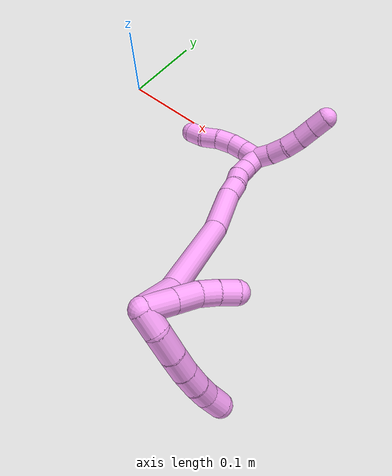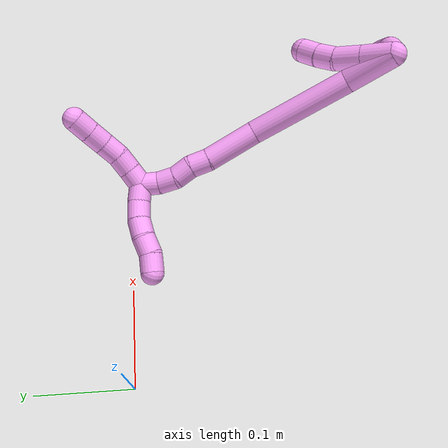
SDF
<sdf version="1.7">
 <world name="default">
  <model name="4">
   <static>0</static>
   <link name="4">
    <collision name="collision-cylinder-e_1_2_8">
     <pose>0.011641 0.000125 0.001546 -0.080484 1.43837 -0.070483</pose>
     <geometry><cylinder><radius>0.0125</radius><length>0.023488</length></cylinder></geometry>
     <surface>
      <friction><ode><mu>1.16</mu><mu2>1.16</mu2><slip1>0</slip1><slip2>0</slip2></ode></friction>
      <contact><ode><kp>1e+06</kp><kd>1</kd><max_vel>0</max_vel><min_depth>0.001</min_depth></ode></contact>
     </surface>
    </collision>
    <visual name="visual-cylinder-e_1_2_8">
     <pose>0.011641 0.000125 0.001546 -0.080484 1.43837 -0.070483</pose>
     <geometry><cylinder><radius>0.0125</radius><length>0.023488</length></cylinder></geometry>
     <material><ambient>1 0.65098 0.996078 1</ambient></material>
    </visual>
    <collision name="collision-cylinder-e_2_8_9">
     <pose>0.038285 -2.7e-05 0.00044 3.03778 1.39495 3.01776</pose>
     <geometry><cylinder><radius>0.0125</radius><length>0.030475</length></cylinder></geometry>
     <surface>
      <friction><ode><mu>1.16</mu><mu2>1.16</mu2><slip1>0</slip1><slip2>0</slip2></ode></friction>
      <contact><ode><kp>1e+06</kp><kd>1</kd><max_vel>0</max_vel><min_depth>0.001</min_depth></ode></contact>
     </surface>
    </collision>
    <visual name="visual-cylinder-e_2_8_9">
     <pose>0.038285 -2.7e-05 0.00044 3.03778 1.39495 3.01776</pose>
     <geometry><cylinder><radius>0.0125</radius><length>0.030475</length></cylinder></geometry>
     <material><ambient>1 0.65098 0.996078 1</ambient></material>
    </visual>
    <collision name="collision-cylinder-e_3_9_10">
     <pose>0.06521 -0.000435 -0.005404 3.1004 1.3089 3.08791</pose>
     <geometry><cylinder><radius>0.0125</radius><length>0.024686</length></cylinder></geometry>
     <surface>
      <friction><ode><mu>1.16</mu><mu2>1.16</mu2><slip1>0</slip1><slip2>0</slip2></ode></friction>
      <contact><ode><kp>1e+06</kp><kd>1</kd><max_vel>0</max_vel><min_depth>0.001</min_depth></ode></contact>
     </surface>
    </collision>
    <visual name="visual-cylinder-e_3_9_10">
     <pose>0.06521 -0.000435 -0.005404 3.1004 1.3089 3.08791</pose>
     <geometry><cylinder><radius>0.0125</radius><length>0.024686</length></cylinder></geometry>
     <material><ambient>1 0.65098 0.996078 1</ambient></material>
    </visual>
    <collision name="collision-cylinder-e_4_10_11">
     <pose>0.088934 7.8e-05 -0.01229 -2.96885 1.26328 -2.90599</pose>
     <geometry><cylinder><radius>0.0125</radius><length>0.024767</length></cylinder></geometry>
     <surface>
      <friction><ode><mu>1.16</mu><mu2>1.16</mu2><slip1>0</slip1><slip2>0</slip2></ode></friction>
      <contact><ode><kp>1e+06</kp><kd>1</kd><max_vel>0</max_vel><min_depth>0.001</min_depth></ode></contact>
     </surface>
    </collision>
    <visual name="visual-cylinder-e_4_10_11">
     <pose>0.088934 7.8e-05 -0.01229 -2.96885 1.26328 -2.90599</pose>
     <geometry><cylinder><radius>0.0125</radius><length>0.024767</length></cylinder></geometry>
     <material><ambient>1 0.65098 0.996078 1</ambient></material>
    </visual>
    <collision name="collision-cylinder-e_5_11_12">
     <pose>0.1104 0.001677 -0.020248 -2.92128 1.14601 -2.80204</pose>
     <geometry><cylinder><radius>0.0125</radius><length>0.021211</length></cylinder></geometry>
     <surface>
      <friction><ode><mu>1.16</mu><mu2>1.16</mu2><slip1>0</slip1><slip2>0</slip2></ode></friction>
      <contact><ode><kp>1e+06</kp><kd>1</kd><max_vel>0</max_vel><min_depth>0.001</min_depth></ode></contact>
     </surface>
    </collision>
    <visual name="visual-cylinder-e_5_11_12">
     <pose>0.1104 0.001677 -0.020248 -2.92128 1.14601 -2.80204</pose>
     <geometry><cylinder><radius>0.0125</radius><length>0.021211</length></cylinder></geometry>
     <material><ambient>1 0.65098 0.996078 1</ambient></material>
    </visual>
    <collision name="collision-cylinder-e_6_12_6">
     <pose>0.131908 0.005219 -0.028249 -2.53606 1.20447 -2.28857</pose>
     <geometry><cylinder><radius>0.0125</radius><length>0.025373</length></cylinder></geometry>
     <surface>
      <friction><ode><mu>1.16</mu><mu2>1.16</mu2><slip1>0</slip1><slip2>0</slip2></ode></friction>
      <contact><ode><kp>1e+06</kp><kd>1</kd><max_vel>0</max_vel><min_depth>0.001</min_depth></ode></contact>
     </surface>
    </collision>
    <visual name="visual-cylinder-e_6_12_6">
     <pose>0.131908 0.005219 -0.028249 -2.53606 1.20447 -2.28857</pose>
     <geometry><cylinder><radius>0.0125</radius><length>0.025373</length></cylinder></geometry>
     <material><ambient>1 0.65098 0.996078 1</ambient></material>
    </visual>
    <collision name="collision-cylinder-e_1_2_13">
     <pose>0.007421 0.012273 -0.006643 -2.06691 0.488753 -0.792727</pose>
     <geometry><cylinder><radius>0.0125</radius><length>0.031612</length></cylinder></geometry>
     <surface>
      <friction><ode><mu>1.16</mu><mu2>1.16</mu2><slip1>0</slip1><slip2>0</slip2></ode></friction>
      <contact><ode><kp>1e+06</kp><kd>1</kd><max_vel>0</max_vel><min_depth>0.001</min_depth></ode></contact>
     </surface>
    </collision>
    <visual name="visual-cylinder-e_1_2_13">
     <pose>0.007421 0.012273 -0.006643 -2.06691 0.488753 -0.792727</pose>
     <geometry><cylinder><radius>0.0125</radius><length>0.031612</length></cylinder></geometry>
     <material><ambient>1 0.65098 0.996078 1</ambient></material>
    </visual>
    <collision name="collision-cylinder-e_2_13_14">
     <pose>0.021195 0.035799 -0.018882 -2.03228 0.467994 -0.734584</pose>
     <geometry><cylinder><radius>0.0125</radius><length>0.028164</length></cylinder></geometry>
     <surface>
      <friction><ode><mu>1.16</mu><mu2>1.16</mu2><slip1>0</slip1><slip2>0</slip2></ode></friction>
      <contact><ode><kp>1e+06</kp><kd>1</kd><max_vel>0</max_vel><min_depth>0.001</min_depth></ode></contact>
     </surface>
    </collision>
    <visual name="visual-cylinder-e_2_13_14">
     <pose>0.021195 0.035799 -0.018882 -2.03228 0.467994 -0.734584</pose>
     <geometry><cylinder><radius>0.0125</radius><length>0.028164</length></cylinder></geometry>
     <material><ambient>1 0.65098 0.996078 1</ambient></material>
    </visual>
    <collision name="collision-cylinder-e_3_14_15">
     <pose>0.033185 0.055235 -0.026094 -1.76576 0.594412 -0.713461</pose>
     <geometry><cylinder><radius>0.0125</radius><length>0.020135</length></cylinder></geometry>
     <surface>
      <friction><ode><mu>1.16</mu><mu2>1.16</mu2><slip1>0</slip1><slip2>0</slip2></ode></friction>
      <contact><ode><kp>1e+06</kp><kd>1</kd><max_vel>0</max_vel><min_depth>0.001</min_depth></ode></contact>
     </surface>
    </collision>
    <visual name="visual-cylinder-e_3_14_15">
     <pose>0.033185 0.055235 -0.026094 -1.76576 0.594412 -0.713461</pose>
     <geometry><cylinder><radius>0.0125</radius><length>0.020135</length></cylinder></geometry>
     <material><ambient>1 0.65098 0.996078 1</ambient></material>
    </visual>
    <collision name="collision-cylinder-e_4_15_5">
     <pose>0.044917 0.071367 -0.028464 -1.66533 0.6519 -0.711519</pose>
     <geometry><cylinder><radius>0.0125</radius><length>0.020089</length></cylinder></geometry>
     <surface>
      <friction><ode><mu>1.16</mu><mu2>1.16</mu2><slip1>0</slip1><slip2>0</slip2></ode></friction>
      <contact><ode><kp>1e+06</kp><kd>1</kd><max_vel>0</max_vel><min_depth>0.001</min_depth></ode></contact>
     </surface>
    </collision>
    <visual name="visual-cylinder-e_4_15_5">
     <pose>0.044917 0.071367 -0.028464 -1.66533 0.6519 -0.711519</pose>
     <geometry><cylinder><radius>0.0125</radius><length>0.020089</length></cylinder></geometry>
     <material><ambient>1 0.65098 0.996078 1</ambient></material>
    </visual>
    <collision name="collision-cylinder-e_1_2_16">
     <pose>0.00846 0.014428 -0.020304 -2.52377 0.327428 -0.955313</pose>
     <geometry><cylinder><radius>0.0125</radius><length>0.052612</length></cylinder></geometry>
     <surface>
      <friction><ode><mu>1.16</mu><mu2>1.16</mu2><slip1>0</slip1><slip2>0</slip2></ode></friction>
      <contact><ode><kp>1e+06</kp><kd>1</kd><max_vel>0</max_vel><min_depth>0.001</min_depth></ode></contact>
     </surface>
    </collision>
    <visual name="visual-cylinder-e_1_2_16">
     <pose>0.00846 0.014428 -0.020304 -2.52377 0.327428 -0.955313</pose>
     <geometry><cylinder><radius>0.0125</radius><length>0.052612</length></cylinder></geometry>
     <material><ambient>1 0.65098 0.996078 1</ambient></material>
    </visual>
    <collision name="collision-cylinder-e_2_16_17">
     <pose>0.019236 0.064265 -0.082677 -2.44196 0.04209 -0.11526</pose>
     <geometry><cylinder><radius>0.0125</radius><length>0.110073</length></cylinder></geometry>
     <surface>
      <friction><ode><mu>1.16</mu><mu2>1.16</mu2><slip1>0</slip1><slip2>0</slip2></ode></friction>
      <contact><ode><kp>1e+06</kp><kd>1</kd><max_vel>0</max_vel><min_depth>0.001</min_depth></ode></contact>
     </surface>
    </collision>
    <visual name="visual-cylinder-e_2_16_17">
     <pose>0.019236 0.064265 -0.082677 -2.44196 0.04209 -0.11526</pose>
     <geometry><cylinder><radius>0.0125</radius><length>0.110073</length></cylinder></geometry>
     <material><ambient>1 0.65098 0.996078 1</ambient></material>
    </visual>
    <collision name="collision-cylinder-e_3_17_18">
     <pose>0.016887 0.117725 -0.146058 -2.43881 -0.165496 0.444973</pose>
     <geometry><cylinder><radius>0.0125</radius><length>0.05663</length></cylinder></geometry>
     <surface>
      <friction><ode><mu>1.16</mu><mu2>1.16</mu2><slip1>0</slip1><slip2>0</slip2></ode></friction>
      <contact><ode><kp>1e+06</kp><kd>1</kd><max_vel>0</max_vel><min_depth>0.001</min_depth></ode></contact>
     </surface>
    </collision>
    <visual name="visual-cylinder-e_3_17_18">
     <pose>0.016887 0.117725 -0.146058 -2.43881 -0.165496 0.444973</pose>
     <geometry><cylinder><radius>0.0125</radius><length>0.05663</length></cylinder></geometry>
     <material><ambient>1 0.65098 0.996078 1</ambient></material>
    </visual>
    <collision name="collision-cylinder-e_4_18_19">
     <pose>0.011099 0.143629 -0.174 -2.27204 -0.108836 0.233515</pose>
     <geometry><cylinder><radius>0.0125</radius><length>0.020681</length></cylinder></geometry>
     <surface>
      <friction><ode><mu>1.16</mu><mu2>1.16</mu2><slip1>0</slip1><slip2>0</slip2></ode></friction>
      <contact><ode><kp>1e+06</kp><kd>1</kd><max_vel>0</max_vel><min_depth>0.001</min_depth></ode></contact>
     </surface>
    </collision>
    <visual name="visual-cylinder-e_4_18_19">
     <pose>0.011099 0.143629 -0.174 -2.27204 -0.108836 0.233515</pose>
     <geometry><cylinder><radius>0.0125</radius><length>0.020681</length></cylinder></geometry>
     <material><ambient>1 0.65098 0.996078 1</ambient></material>
    </visual>
    <collision name="collision-cylinder-e_5_19_20">
     <pose>0.008837 0.156989 -0.188903 -2.55422 -0.114142 0.373421</pose>
     <geometry><cylinder><radius>0.0125</radius><length>0.020002</length></cylinder></geometry>
     <surface>
      <friction><ode><mu>1.16</mu><mu2>1.16</mu2><slip1>0</slip1><slip2>0</slip2></ode></friction>
      <contact><ode><kp>1e+06</kp><kd>1</kd><max_vel>0</max_vel><min_depth>0.001</min_depth></ode></contact>
     </surface>
    </collision>
    <visual name="visual-cylinder-e_5_19_20">
     <pose>0.008837 0.156989 -0.188903 -2.55422 -0.114142 0.373421</pose>
     <geometry><cylinder><radius>0.0125</radius><length>0.020002</length></cylinder></geometry>
     <material><ambient>1 0.65098 0.996078 1</ambient></material>
    </visual>
    <collision name="collision-cylinder-e_6_20_21">
     <pose>0.008124 0.170275 -0.203443 -2.24912 0.042643 -0.089086</pose>
     <geometry><cylinder><radius>0.0125</radius><length>0.020001</length></cylinder></geometry>
     <surface>
      <friction><ode><mu>1.16</mu><mu2>1.16</mu2><slip1>0</slip1><slip2>0</slip2></ode></friction>
      <contact><ode><kp>1e+06</kp><kd>1</kd><max_vel>0</max_vel><min_depth>0.001</min_depth></ode></contact>
     </surface>
    </collision>
    <visual name="visual-cylinder-e_6_20_21">
     <pose>0.008124 0.170275 -0.203443 -2.24912 0.042643 -0.089086</pose>
     <geometry><cylinder><radius>0.0125</radius><length>0.020001</length></cylinder></geometry>
     <material><ambient>1 0.65098 0.996078 1</ambient></material>
    </visual>
    <collision name="collision-cylinder-e_7_21_1">
     <pose>0.007788 0.187104 -0.213902 -2.00438 -0.076311 0.119339</pose>
     <geometry><cylinder><radius>0.0125</radius><length>0.020002</length></cylinder></geometry>
     <surface>
      <friction><ode><mu>1.16</mu><mu2>1.16</mu2><slip1>0</slip1><slip2>0</slip2></ode></friction>
      <contact><ode><kp>1e+06</kp><kd>1</kd><max_vel>0</max_vel><min_depth>0.001</min_depth></ode></contact>
     </surface>
    </collision>
    <visual name="visual-cylinder-e_7_21_1">
     <pose>0.007788 0.187104 -0.213902 -2.00438 -0.076311 0.119339</pose>
     <geometry><cylinder><radius>0.0125</radius><length>0.020002</length></cylinder></geometry>
     <material><ambient>1 0.65098 0.996078 1</ambient></material>
    </visual>
    <collision name="collision-cylinder-e_1_1_22">
     <pose>0.001761 0.193868 -0.22628 2.86944 -0.554436 -2.24459</pose>
     <geometry><cylinder><radius>0.0125</radius><length>0.02</length></cylinder></geometry>
     <surface>
      <friction><ode><mu>1.16</mu><mu2>1.16</mu2><slip1>0</slip1><slip2>0</slip2></ode></friction>
      <contact><ode><kp>1e+06</kp><kd>1</kd><max_vel>0</max_vel><min_depth>0.001</min_depth></ode></contact>
     </surface>
    </collision>
    <visual name="visual-cylinder-e_1_1_22">
     <pose>0.001761 0.193868 -0.22628 2.86944 -0.554436 -2.24459</pose>
     <geometry><cylinder><radius>0.0125</radius><length>0.02</length></cylinder></geometry>
     <material><ambient>1 0.65098 0.996078 1</ambient></material>
    </visual>
    <collision name="collision-cylinder-e_2_22_23">
     <pose>-0.009519 0.188277 -0.241742 2.71504 -0.645422 -1.99218</pose>
     <geometry><cylinder><radius>0.0125</radius><length>0.02</length></cylinder></geometry>
     <surface>
      <friction><ode><mu>1.16</mu><mu2>1.16</mu2><slip1>0</slip1><slip2>0</slip2></ode></friction>
      <contact><ode><kp>1e+06</kp><kd>1</kd><max_vel>0</max_vel><min_depth>0.001</min_depth></ode></contact>
     </surface>
    </collision>
    <visual name="visual-cylinder-e_2_22_23">
     <pose>-0.009519 0.188277 -0.241742 2.71504 -0.645422 -1.99218</pose>
     <geometry><cylinder><radius>0.0125</radius><length>0.02</length></cylinder></geometry>
     <material><ambient>1 0.65098 0.996078 1</ambient></material>
    </visual>
    <collision name="collision-cylinder-e_3_23_24">
     <pose>-0.021706 0.179633 -0.254794 2.39577 -0.665124 -1.44654</pose>
     <geometry><cylinder><radius>0.0125</radius><length>0.02</length></cylinder></geometry>
     <surface>
      <friction><ode><mu>1.16</mu><mu2>1.16</mu2><slip1>0</slip1><slip2>0</slip2></ode></friction>
      <contact><ode><kp>1e+06</kp><kd>1</kd><max_vel>0</max_vel><min_depth>0.001</min_depth></ode></contact>
     </surface>
    </collision>
    <visual name="visual-cylinder-e_3_23_24">
     <pose>-0.021706 0.179633 -0.254794 2.39577 -0.665124 -1.44654</pose>
     <geometry><cylinder><radius>0.0125</radius><length>0.02</length></cylinder></geometry>
     <material><ambient>1 0.65098 0.996078 1</ambient></material>
    </visual>
    <collision name="collision-cylinder-e_4_24_25">
     <pose>-0.032432 0.167704 -0.26656 2.30819 -0.472858 -0.996967</pose>
     <geometry><cylinder><radius>0.0125</radius><length>0.02</length></cylinder></geometry>
     <surface>
      <friction><ode><mu>1.16</mu><mu2>1.16</mu2><slip1>0</slip1><slip2>0</slip2></ode></friction>
      <contact><ode><kp>1e+06</kp><kd>1</kd><max_vel>0</max_vel><min_depth>0.001</min_depth></ode></contact>
     </surface>
    </collision>
    <visual name="visual-cylinder-e_4_24_25">
     <pose>-0.032432 0.167704 -0.26656 2.30819 -0.472858 -0.996967</pose>
     <geometry><cylinder><radius>0.0125</radius><length>0.02</length></cylinder></geometry>
     <material><ambient>1 0.65098 0.996078 1</ambient></material>
    </visual>
    <collision name="collision-cylinder-e_5_25_4">
     <pose>-0.042171 0.156976 -0.280029 2.6365 -0.545051 -1.65046</pose>
     <geometry><cylinder><radius>0.0125</radius><length>0.02</length></cylinder></geometry>
     <surface>
      <friction><ode><mu>1.16</mu><mu2>1.16</mu2><slip1>0</slip1><slip2>0</slip2></ode></friction>
      <contact><ode><kp>1e+06</kp><kd>1</kd><max_vel>0</max_vel><min_depth>0.001</min_depth></ode></contact>
     </surface>
    </collision>
    <visual name="visual-cylinder-e_5_25_4">
     <pose>-0.042171 0.156976 -0.280029 2.6365 -0.545051 -1.65046</pose>
     <geometry><cylinder><radius>0.0125</radius><length>0.02</length></cylinder></geometry>
     <material><ambient>1 0.65098 0.996078 1</ambient></material>
    </visual>
    <collision name="collision-cylinder-e_1_1_26">
     <pose>0.008192 0.204433 -0.212606 -0.985711 0.116911 -0.06284</pose>
     <geometry><cylinder><radius>0.0125</radius><length>0.02</length></cylinder></geometry>
     <surface>
      <friction><ode><mu>1.16</mu><mu2>1.16</mu2><slip1>0</slip1><slip2>0</slip2></ode></friction>
      <contact><ode><kp>1e+06</kp><kd>1</kd><max_vel>0</max_vel><min_depth>0.001</min_depth></ode></contact>
     </surface>
    </collision>
    <visual name="visual-cylinder-e_1_1_26">
     <pose>0.008192 0.204433 -0.212606 -0.985711 0.116911 -0.06284</pose>
     <geometry><cylinder><radius>0.0125</radius><length>0.02</length></cylinder></geometry>
     <material><ambient>1 0.65098 0.996078 1</ambient></material>
    </visual>
    <collision name="collision-cylinder-e_2_26_27">
     <pose>0.009063 0.22092 -0.201416 -0.963323 -0.029544 0.015444</pose>
     <geometry><cylinder><radius>0.0125</radius><length>0.02</length></cylinder></geometry>
     <surface>
      <friction><ode><mu>1.16</mu><mu2>1.16</mu2><slip1>0</slip1><slip2>0</slip2></ode></friction>
      <contact><ode><kp>1e+06</kp><kd>1</kd><max_vel>0</max_vel><min_depth>0.001</min_depth></ode></contact>
     </surface>
    </collision>
    <visual name="visual-cylinder-e_2_26_27">
     <pose>0.009063 0.22092 -0.201416 -0.963323 -0.029544 0.015444</pose>
     <geometry><cylinder><radius>0.0125</radius><length>0.02</length></cylinder></geometry>
     <material><ambient>1 0.65098 0.996078 1</ambient></material>
    </visual>
    <collision name="collision-cylinder-e_3_27_28">
     <pose>0.00762 0.238239 -0.191752 -1.16095 -0.115037 0.075494</pose>
     <geometry><cylinder><radius>0.0125</radius><length>0.02</length></cylinder></geometry>
     <surface>
      <friction><ode><mu>1.16</mu><mu2>1.16</mu2><slip1>0</slip1><slip2>0</slip2></ode></friction>
      <contact><ode><kp>1e+06</kp><kd>1</kd><max_vel>0</max_vel><min_depth>0.001</min_depth></ode></contact>
     </surface>
    </collision>
    <visual name="visual-cylinder-e_3_27_28">
     <pose>0.00762 0.238239 -0.191752 -1.16095 -0.115037 0.075494</pose>
     <geometry><cylinder><radius>0.0125</radius><length>0.02</length></cylinder></geometry>
     <material><ambient>1 0.65098 0.996078 1</ambient></material>
    </visual>
    <collision name="collision-cylinder-e_4_28_29">
     <pose>0.004065 0.256076 -0.183545 -1.1177 -0.2431 0.152479</pose>
     <geometry><cylinder><radius>0.0125</radius><length>0.02</length></cylinder></geometry>
     <surface>
      <friction><ode><mu>1.16</mu><mu2>1.16</mu2><slip1>0</slip1><slip2>0</slip2></ode></friction>
      <contact><ode><kp>1e+06</kp><kd>1</kd><max_vel>0</max_vel><min_depth>0.001</min_depth></ode></contact>
     </surface>
    </collision>
    <visual name="visual-cylinder-e_4_28_29">
     <pose>0.004065 0.256076 -0.183545 -1.1177 -0.2431 0.152479</pose>
     <geometry><cylinder><radius>0.0125</radius><length>0.02</length></cylinder></geometry>
     <material><ambient>1 0.65098 0.996078 1</ambient></material>
    </visual>
    <collision name="collision-cylinder-e_5_29_3">
     <pose>-0.000754 0.273434 -0.174859 -1.09593 -0.243649 0.149164</pose>
     <geometry><cylinder><radius>0.0125</radius><length>0.02</length></cylinder></geometry>
     <surface>
      <friction><ode><mu>1.16</mu><mu2>1.16</mu2><slip1>0</slip1><slip2>0</slip2></ode></friction>
      <contact><ode><kp>1e+06</kp><kd>1</kd><max_vel>0</max_vel><min_depth>0.001</min_depth></ode></contact>
     </surface>
    </collision>
    <visual name="visual-cylinder-e_5_29_3">
     <pose>-0.000754 0.273434 -0.174859 -1.09593 -0.243649 0.149164</pose>
     <geometry><cylinder><radius>0.0125</radius><length>0.02</length></cylinder></geometry>
     <material><ambient>1 0.65098 0.996078 1</ambient></material>
    </visual>
    <collision name="collision-sphere-3">
     <pose>-0.003167 0.282065 -0.170422 0 -0 0</pose>
     <geometry><sphere><radius>0.0125</radius></sphere></geometry>
     <surface>
      <friction><ode><mu>1.16</mu><mu2>1.16</mu2><slip1>0</slip1><slip2>0</slip2></ode></friction>
      <contact><ode><kp>1e+06</kp><kd>1</kd><max_vel>0</max_vel><min_depth>0.001</min_depth></ode></contact>
     </surface>
    </collision>
    <visual name="visual-sphere-3">
     <pose>-0.003167 0.282065 -0.170422 0 -0 0</pose>
     <geometry><sphere><radius>0.0125</radius></sphere></geometry>
     <material><ambient>1 0.65098 0.996078 1</ambient></material>
    </visual>
    <collision name="collision-sphere-29">
     <pose>0.001658 0.264803 -0.179296 0 -0 0</pose>
     <geometry><sphere><radius>0.0125</radius></sphere></geometry>
     <surface>
      <friction><ode><mu>1.16</mu><mu2>1.16</mu2><slip1>0</slip1><slip2>0</slip2></ode></friction>
      <contact><ode><kp>1e+06</kp><kd>1</kd><max_vel>0</max_vel><min_depth>0.001</min_depth></ode></contact>
     </surface>
    </collision>
    <visual name="visual-sphere-29">
     <pose>0.001658 0.264803 -0.179296 0 -0 0</pose>
     <geometry><sphere><radius>0.0125</radius></sphere></geometry>
     <material><ambient>1 0.65098 0.996078 1</ambient></material>
    </visual>
    <collision name="collision-sphere-28">
     <pose>0.006472 0.24735 -0.187794 0 -0 0</pose>
     <geometry><sphere><radius>0.0125</radius></sphere></geometry>
     <surface>
      <friction><ode><mu>1.16</mu><mu2>1.16</mu2><slip1>0</slip1><slip2>0</slip2></ode></friction>
      <contact><ode><kp>1e+06</kp><kd>1</kd><max_vel>0</max_vel><min_depth>0.001</min_depth></ode></contact>
     </surface>
    </collision>
    <visual name="visual-sphere-28">
     <pose>0.006472 0.24735 -0.187794 0 -0 0</pose>
     <geometry><sphere><radius>0.0125</radius></sphere></geometry>
     <material><ambient>1 0.65098 0.996078 1</ambient></material>
    </visual>
    <collision name="collision-sphere-27">
     <pose>0.008768 0.229127 -0.19571 0 -0 0</pose>
     <geometry><sphere><radius>0.0125</radius></sphere></geometry>
     <surface>
      <friction><ode><mu>1.16</mu><mu2>1.16</mu2><slip1>0</slip1><slip2>0</slip2></ode></friction>
      <contact><ode><kp>1e+06</kp><kd>1</kd><max_vel>0</max_vel><min_depth>0.001</min_depth></ode></contact>
     </surface>
    </collision>
    <visual name="visual-sphere-27">
     <pose>0.008768 0.229127 -0.19571 0 -0 0</pose>
     <geometry><sphere><radius>0.0125</radius></sphere></geometry>
     <material><ambient>1 0.65098 0.996078 1</ambient></material>
    </visual>
    <collision name="collision-sphere-26">
     <pose>0.009359 0.212713 -0.207121 0 -0 0</pose>
     <geometry><sphere><radius>0.0125</radius></sphere></geometry>
     <surface>
      <friction><ode><mu>1.16</mu><mu2>1.16</mu2><slip1>0</slip1><slip2>0</slip2></ode></friction>
      <contact><ode><kp>1e+06</kp><kd>1</kd><max_vel>0</max_vel><min_depth>0.001</min_depth></ode></contact>
     </surface>
    </collision>
    <visual name="visual-sphere-26">
     <pose>0.009359 0.212713 -0.207121 0 -0 0</pose>
     <geometry><sphere><radius>0.0125</radius></sphere></geometry>
     <material><ambient>1 0.65098 0.996078 1</ambient></material>
    </visual>
    <collision name="collision-sphere-4">
     <pose>-0.047355 0.152838 -0.287512 0 -0 0</pose>
     <geometry><sphere><radius>0.0125</radius></sphere></geometry>
     <surface>
      <friction><ode><mu>1.16</mu><mu2>1.16</mu2><slip1>0</slip1><slip2>0</slip2></ode></friction>
      <contact><ode><kp>1e+06</kp><kd>1</kd><max_vel>0</max_vel><min_depth>0.001</min_depth></ode></contact>
     </surface>
    </collision>
    <visual name="visual-sphere-4">
     <pose>-0.047355 0.152838 -0.287512 0 -0 0</pose>
     <geometry><sphere><radius>0.0125</radius></sphere></geometry>
     <material><ambient>1 0.65098 0.996078 1</ambient></material>
    </visual>
    <collision name="collision-sphere-25">
     <pose>-0.036986 0.161114 -0.272545 0 -0 0</pose>
     <geometry><sphere><radius>0.0125</radius></sphere></geometry>
     <surface>
      <friction><ode><mu>1.16</mu><mu2>1.16</mu2><slip1>0</slip1><slip2>0</slip2></ode></friction>
      <contact><ode><kp>1e+06</kp><kd>1</kd><max_vel>0</max_vel><min_depth>0.001</min_depth></ode></contact>
     </surface>
    </collision>
    <visual name="visual-sphere-25">
     <pose>-0.036986 0.161114 -0.272545 0 -0 0</pose>
     <geometry><sphere><radius>0.0125</radius></sphere></geometry>
     <material><ambient>1 0.65098 0.996078 1</ambient></material>
    </visual>
    <collision name="collision-sphere-24">
     <pose>-0.027877 0.174294 -0.260574 0 -0 0</pose>
     <geometry><sphere><radius>0.0125</radius></sphere></geometry>
     <surface>
      <friction><ode><mu>1.16</mu><mu2>1.16</mu2><slip1>0</slip1><slip2>0</slip2></ode></friction>
      <contact><ode><kp>1e+06</kp><kd>1</kd><max_vel>0</max_vel><min_depth>0.001</min_depth></ode></contact>
     </surface>
    </collision>
    <visual name="visual-sphere-24">
     <pose>-0.027877 0.174294 -0.260574 0 -0 0</pose>
     <geometry><sphere><radius>0.0125</radius></sphere></geometry>
     <material><ambient>1 0.65098 0.996078 1</ambient></material>
    </visual>
    <collision name="collision-sphere-23">
     <pose>-0.015534 0.184972 -0.249015 0 -0 0</pose>
     <geometry><sphere><radius>0.0125</radius></sphere></geometry>
     <surface>
      <friction><ode><mu>1.16</mu><mu2>1.16</mu2><slip1>0</slip1><slip2>0</slip2></ode></friction>
      <contact><ode><kp>1e+06</kp><kd>1</kd><max_vel>0</max_vel><min_depth>0.001</min_depth></ode></contact>
     </surface>
    </collision>
    <visual name="visual-sphere-23">
     <pose>-0.015534 0.184972 -0.249015 0 -0 0</pose>
     <geometry><sphere><radius>0.0125</radius></sphere></geometry>
     <material><ambient>1 0.65098 0.996078 1</ambient></material>
    </visual>
    <collision name="collision-sphere-22">
     <pose>-0.003503 0.191582 -0.234469 0 -0 0</pose>
     <geometry><sphere><radius>0.0125</radius></sphere></geometry>
     <surface>
      <friction><ode><mu>1.16</mu><mu2>1.16</mu2><slip1>0</slip1><slip2>0</slip2></ode></friction>
      <contact><ode><kp>1e+06</kp><kd>1</kd><max_vel>0</max_vel><min_depth>0.001</min_depth></ode></contact>
     </surface>
    </collision>
    <visual name="visual-sphere-22">
     <pose>-0.003503 0.191582 -0.234469 0 -0 0</pose>
     <geometry><sphere><radius>0.0125</radius></sphere></geometry>
     <material><ambient>1 0.65098 0.996078 1</ambient></material>
    </visual>
    <collision name="collision-sphere-1">
     <pose>0.007026 0.196153 -0.218091 0 -0 0</pose>
     <geometry><sphere><radius>0.0125</radius></sphere></geometry>
     <surface>
      <friction><ode><mu>1.16</mu><mu2>1.16</mu2><slip1>0</slip1><slip2>0</slip2></ode></friction>
      <contact><ode><kp>1e+06</kp><kd>1</kd><max_vel>0</max_vel><min_depth>0.001</min_depth></ode></contact>
     </surface>
    </collision>
    <visual name="visual-sphere-1">
     <pose>0.007026 0.196153 -0.218091 0 -0 0</pose>
     <geometry><sphere><radius>0.0125</radius></sphere></geometry>
     <material><ambient>1 0.65098 0.996078 1</ambient></material>
    </visual>
    <collision name="collision-sphere-21">
     <pose>0.008551 0.178055 -0.209712 0 -0 0</pose>
     <geometry><sphere><radius>0.0125</radius></sphere></geometry>
     <surface>
      <friction><ode><mu>1.16</mu><mu2>1.16</mu2><slip1>0</slip1><slip2>0</slip2></ode></friction>
      <contact><ode><kp>1e+06</kp><kd>1</kd><max_vel>0</max_vel><min_depth>0.001</min_depth></ode></contact>
     </surface>
    </collision>
    <visual name="visual-sphere-21">
     <pose>0.008551 0.178055 -0.209712 0 -0 0</pose>
     <geometry><sphere><radius>0.0125</radius></sphere></geometry>
     <material><ambient>1 0.65098 0.996078 1</ambient></material>
    </visual>
    <collision name="collision-sphere-12">
     <pose>0.120063 0.002633 -0.024513 0 -0 0</pose>
     <geometry><sphere><radius>0.0125</radius></sphere></geometry>
     <surface>
      <friction><ode><mu>1.16</mu><mu2>1.16</mu2><slip1>0</slip1><slip2>0</slip2></ode></friction>
      <contact><ode><kp>1e+06</kp><kd>1</kd><max_vel>0</max_vel><min_depth>0.001</min_depth></ode></contact>
     </surface>
    </collision>
    <visual name="visual-sphere-12">
     <pose>0.120063 0.002633 -0.024513 0 -0 0</pose>
     <geometry><sphere><radius>0.0125</radius></sphere></geometry>
     <material><ambient>1 0.65098 0.996078 1</ambient></material>
    </visual>
    <collision name="collision-sphere-11">
     <pose>0.100737 0.000722 -0.015983 0 -0 0</pose>
     <geometry><sphere><radius>0.0125</radius></sphere></geometry>
     <surface>
      <friction><ode><mu>1.16</mu><mu2>1.16</mu2><slip1>0</slip1><slip2>0</slip2></ode></friction>
      <contact><ode><kp>1e+06</kp><kd>1</kd><max_vel>0</max_vel><min_depth>0.001</min_depth></ode></contact>
     </surface>
    </collision>
    <visual name="visual-sphere-11">
     <pose>0.100737 0.000722 -0.015983 0 -0 0</pose>
     <geometry><sphere><radius>0.0125</radius></sphere></geometry>
     <material><ambient>1 0.65098 0.996078 1</ambient></material>
    </visual>
    <collision name="collision-sphere-10">
     <pose>0.077132 -0.000566 -0.008598 0 -0 0</pose>
     <geometry><sphere><radius>0.0125</radius></sphere></geometry>
     <surface>
      <friction><ode><mu>1.16</mu><mu2>1.16</mu2><slip1>0</slip1><slip2>0</slip2></ode></friction>
      <contact><ode><kp>1e+06</kp><kd>1</kd><max_vel>0</max_vel><min_depth>0.001</min_depth></ode></contact>
     </surface>
    </collision>
    <visual name="visual-sphere-10">
     <pose>0.077132 -0.000566 -0.008598 0 -0 0</pose>
     <geometry><sphere><radius>0.0125</radius></sphere></geometry>
     <material><ambient>1 0.65098 0.996078 1</ambient></material>
    </visual>
    <collision name="collision-sphere-9">
     <pose>0.053288 -0.000303 -0.002211 0 -0 0</pose>
     <geometry><sphere><radius>0.0125</radius></sphere></geometry>
     <surface>
      <friction><ode><mu>1.16</mu><mu2>1.16</mu2><slip1>0</slip1><slip2>0</slip2></ode></friction>
      <contact><ode><kp>1e+06</kp><kd>1</kd><max_vel>0</max_vel><min_depth>0.001</min_depth></ode></contact>
     </surface>
    </collision>
    <visual name="visual-sphere-9">
     <pose>0.053288 -0.000303 -0.002211 0 -0 0</pose>
     <geometry><sphere><radius>0.0125</radius></sphere></geometry>
     <material><ambient>1 0.65098 0.996078 1</ambient></material>
    </visual>
    <collision name="collision-sphere-2">
     <geometry><sphere><radius>0.0125</radius></sphere></geometry>
     <surface>
      <friction><ode><mu>1.16</mu><mu2>1.16</mu2><slip1>0</slip1><slip2>0</slip2></ode></friction>
      <contact><ode><kp>1e+06</kp><kd>1</kd><max_vel>0</max_vel><min_depth>0.001</min_depth></ode></contact>
     </surface>
    </collision>
    <visual name="visual-sphere-2">
     <geometry><sphere><radius>0.0125</radius></sphere></geometry>
     <material><ambient>1 0.65098 0.996078 1</ambient></material>
    </visual>
    <collision name="collision-sphere-19">
     <pose>0.009976 0.151483 -0.180632 0 -0 0</pose>
     <geometry><sphere><radius>0.0125</radius></sphere></geometry>
     <surface>
      <friction><ode><mu>1.16</mu><mu2>1.16</mu2><slip1>0</slip1><slip2>0</slip2></ode></friction>
      <contact><ode><kp>1e+06</kp><kd>1</kd><max_vel>0</max_vel><min_depth>0.001</min_depth></ode></contact>
     </surface>
    </collision>
    <visual name="visual-sphere-19">
     <pose>0.009976 0.151483 -0.180632 0 -0 0</pose>
     <geometry><sphere><radius>0.0125</radius></sphere></geometry>
     <material><ambient>1 0.65098 0.996078 1</ambient></material>
    </visual>
    <collision name="collision-sphere-8">
     <pose>0.023283 0.000249 0.003091 0 -0 0</pose>
     <geometry><sphere><radius>0.0125</radius></sphere></geometry>
     <surface>
      <friction><ode><mu>1.16</mu><mu2>1.16</mu2><slip1>0</slip1><slip2>0</slip2></ode></friction>
      <contact><ode><kp>1e+06</kp><kd>1</kd><max_vel>0</max_vel><min_depth>0.001</min_depth></ode></contact>
     </surface>
    </collision>
    <visual name="visual-sphere-8">
     <pose>0.023283 0.000249 0.003091 0 -0 0</pose>
     <geometry><sphere><radius>0.0125</radius></sphere></geometry>
     <material><ambient>1 0.65098 0.996078 1</ambient></material>
    </visual>
    <collision name="collision-sphere-6">
     <pose>0.143752 0.007806 -0.031985 0 -0 0</pose>
     <geometry><sphere><radius>0.0125</radius></sphere></geometry>
     <surface>
      <friction><ode><mu>1.16</mu><mu2>1.16</mu2><slip1>0</slip1><slip2>0</slip2></ode></friction>
      <contact><ode><kp>1e+06</kp><kd>1</kd><max_vel>0</max_vel><min_depth>0.001</min_depth></ode></contact>
     </surface>
    </collision>
    <visual name="visual-sphere-6">
     <pose>0.143752 0.007806 -0.031985 0 -0 0</pose>
     <geometry><sphere><radius>0.0125</radius></sphere></geometry>
     <material><ambient>1 0.65098 0.996078 1</ambient></material>
    </visual>
    <collision name="collision-sphere-13">
     <pose>0.014842 0.024546 -0.013286 0 -0 0</pose>
     <geometry><sphere><radius>0.0125</radius></sphere></geometry>
     <surface>
      <friction><ode><mu>1.16</mu><mu2>1.16</mu2><slip1>0</slip1><slip2>0</slip2></ode></friction>
      <contact><ode><kp>1e+06</kp><kd>1</kd><max_vel>0</max_vel><min_depth>0.001</min_depth></ode></contact>
     </surface>
    </collision>
    <visual name="visual-sphere-13">
     <pose>0.014842 0.024546 -0.013286 0 -0 0</pose>
     <geometry><sphere><radius>0.0125</radius></sphere></geometry>
     <material><ambient>1 0.65098 0.996078 1</ambient></material>
    </visual>
    <collision name="collision-sphere-14">
     <pose>0.027547 0.047052 -0.024478 0 -0 0</pose>
     <geometry><sphere><radius>0.0125</radius></sphere></geometry>
     <surface>
      <friction><ode><mu>1.16</mu><mu2>1.16</mu2><slip1>0</slip1><slip2>0</slip2></ode></friction>
      <contact><ode><kp>1e+06</kp><kd>1</kd><max_vel>0</max_vel><min_depth>0.001</min_depth></ode></contact>
     </surface>
    </collision>
    <visual name="visual-sphere-14">
     <pose>0.027547 0.047052 -0.024478 0 -0 0</pose>
     <geometry><sphere><radius>0.0125</radius></sphere></geometry>
     <material><ambient>1 0.65098 0.996078 1</ambient></material>
    </visual>
    <collision name="collision-sphere-15">
     <pose>0.038823 0.063418 -0.02771 0 -0 0</pose>
     <geometry><sphere><radius>0.0125</radius></sphere></geometry>
     <surface>
      <friction><ode><mu>1.16</mu><mu2>1.16</mu2><slip1>0</slip1><slip2>0</slip2></ode></friction>
      <contact><ode><kp>1e+06</kp><kd>1</kd><max_vel>0</max_vel><min_depth>0.001</min_depth></ode></contact>
     </surface>
    </collision>
    <visual name="visual-sphere-15">
     <pose>0.038823 0.063418 -0.02771 0 -0 0</pose>
     <geometry><sphere><radius>0.0125</radius></sphere></geometry>
     <material><ambient>1 0.65098 0.996078 1</ambient></material>
    </visual>
    <collision name="collision-sphere-5">
     <pose>0.051011 0.079316 -0.029217 0 -0 0</pose>
     <geometry><sphere><radius>0.0125</radius></sphere></geometry>
     <surface>
      <friction><ode><mu>1.16</mu><mu2>1.16</mu2><slip1>0</slip1><slip2>0</slip2></ode></friction>
      <contact><ode><kp>1e+06</kp><kd>1</kd><max_vel>0</max_vel><min_depth>0.001</min_depth></ode></contact>
     </surface>
    </collision>
    <visual name="visual-sphere-5">
     <pose>0.051011 0.079316 -0.029217 0 -0 0</pose>
     <geometry><sphere><radius>0.0125</radius></sphere></geometry>
     <material><ambient>1 0.65098 0.996078 1</ambient></material>
    </visual>
    <collision name="collision-sphere-16">
     <pose>0.01692 0.028857 -0.040607 0 -0 0</pose>
     <geometry><sphere><radius>0.0125</radius></sphere></geometry>
     <surface>
      <friction><ode><mu>1.16</mu><mu2>1.16</mu2><slip1>0</slip1><slip2>0</slip2></ode></friction>
      <contact><ode><kp>1e+06</kp><kd>1</kd><max_vel>0</max_vel><min_depth>0.001</min_depth></ode></contact>
     </surface>
    </collision>
    <visual name="visual-sphere-16">
     <pose>0.01692 0.028857 -0.040607 0 -0 0</pose>
     <geometry><sphere><radius>0.0125</radius></sphere></geometry>
     <material><ambient>1 0.65098 0.996078 1</ambient></material>
    </visual>
    <collision name="collision-sphere-17">
     <pose>0.021552 0.099674 -0.124747 0 -0 0</pose>
     <geometry><sphere><radius>0.0125</radius></sphere></geometry>
     <surface>
      <friction><ode><mu>1.16</mu><mu2>1.16</mu2><slip1>0</slip1><slip2>0</slip2></ode></friction>
      <contact><ode><kp>1e+06</kp><kd>1</kd><max_vel>0</max_vel><min_depth>0.001</min_depth></ode></contact>
     </surface>
    </collision>
    <visual name="visual-sphere-17">
     <pose>0.021552 0.099674 -0.124747 0 -0 0</pose>
     <geometry><sphere><radius>0.0125</radius></sphere></geometry>
     <material><ambient>1 0.65098 0.996078 1</ambient></material>
    </visual>
    <collision name="collision-sphere-18">
     <pose>0.012223 0.135776 -0.167368 0 -0 0</pose>
     <geometry><sphere><radius>0.0125</radius></sphere></geometry>
     <surface>
      <friction><ode><mu>1.16</mu><mu2>1.16</mu2><slip1>0</slip1><slip2>0</slip2></ode></friction>
      <contact><ode><kp>1e+06</kp><kd>1</kd><max_vel>0</max_vel><min_depth>0.001</min_depth></ode></contact>
     </surface>
    </collision>
    <visual name="visual-sphere-18">
     <pose>0.012223 0.135776 -0.167368 0 -0 0</pose>
     <geometry><sphere><radius>0.0125</radius></sphere></geometry>
     <material><ambient>1 0.65098 0.996078 1</ambient></material>
    </visual>
    <collision name="collision-sphere-20">
     <pose>0.007698 0.162496 -0.197173 0 -0 0</pose>
     <geometry><sphere><radius>0.0125</radius></sphere></geometry>
     <surface>
      <friction><ode><mu>1.16</mu><mu2>1.16</mu2><slip1>0</slip1><slip2>0</slip2></ode></friction>
      <contact><ode><kp>1e+06</kp><kd>1</kd><max_vel>0</max_vel><min_depth>0.001</min_depth></ode></contact>
     </surface>
    </collision>
    <visual name="visual-sphere-20">
     <pose>0.007698 0.162496 -0.197173 0 -0 0</pose>
     <geometry><sphere><radius>0.0125</radius></sphere></geometry>
     <material><ambient>1 0.65098 0.996078 1</ambient></material>
    </visual>
    <inertial>
     <pose>0.021425 0.097937 -0.109612 0 -0 0</pose>
     <mass>0.75</mass>
     <inertia>
      <ixx>0.000137</ixx>
      <ixy>0</ixy>
      <ixz>0</ixz>
      <iyy>-8.8e-05</iyy>
      <iyz>0</iyz>
      <izz>-0.000152</izz>
     </inertia>
    </inertial>
   </link>
   <pose>0.282585 -0.275372 0.13581 0.288514 0.817534 -0.139019</pose>
  </model>
 </world>
</sdf>
